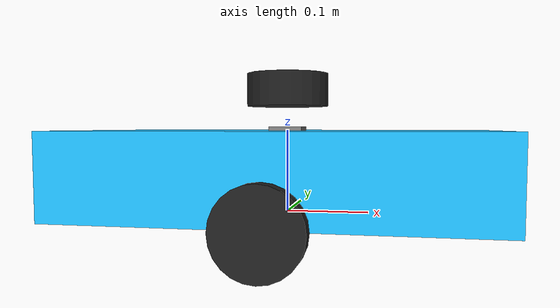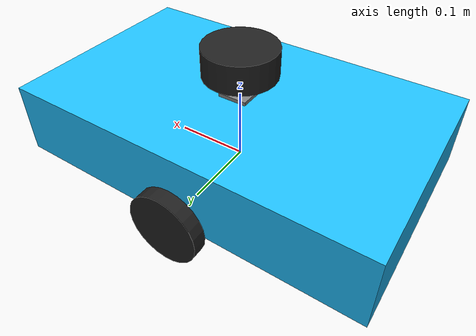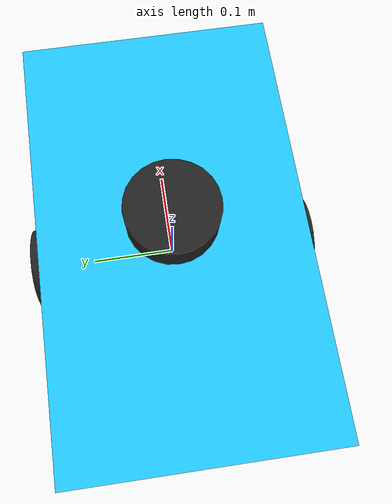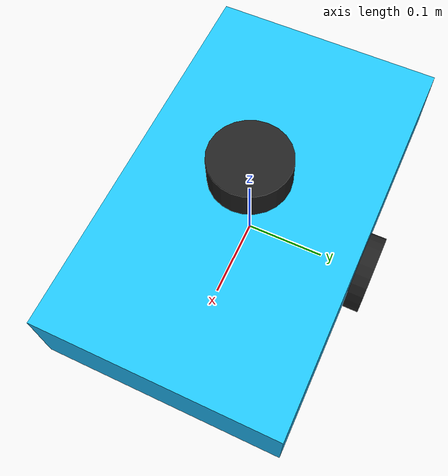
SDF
<sdf version='1.11'>
  <model name='my_robot'>
    <link name='base_link'>
      <inertial>
        <pose>0 0 0.0013157894736842109 0 0 0</pose>
        <mass>6.46</mass>
        <inertia>
          <ixx>0.051433815789473689</ixx>
          <ixy>0</ixy>
          <ixz>0</ixz>
          <iyy>0.15168381578947371</iyy>
          <iyz>0</iyz>
          <izz>0.19047</izz>
        </inertia>
      </inertial>
      <collision name='base_link_collision'>
        <pose>0 0 0.050000000000000003 0 0 0</pose>
        <geometry>
          <box>
            <size>0.5 0.29999999999999999 0.10000000000000001</size>
          </box>
        </geometry>
      </collision>
      <collision name='base_link_fixed_joint_lump__front_caster_collision_1'>
        <pose>0.22500000000000001 0 0 0 0 0</pose>
        <geometry>
          <sphere>
            <radius>0.025000000000000001</radius>
          </sphere>
        </geometry>
      </collision>
      <collision name='base_link_fixed_joint_lump__imu_link_collision_2'>
        <pose>0 0 0.10000000000000001 0 0 0</pose>
        <geometry>
          <box>
            <size>0.040000000000000001 0.040000000000000001 0.01</size>
          </box>
        </geometry>
      </collision>
      <collision name='base_link_fixed_joint_lump__lidar_link_collision_3'>
        <pose>0 0 0.14999999999999999 0 0 0</pose>
        <geometry>
          <cylinder>
            <length>0.040000000000000001</length>
            <radius>0.050000000000000003</radius>
          </cylinder>
        </geometry>
      </collision>
      <collision name='base_link_fixed_joint_lump__rear_caster_collision_4'>
        <pose>-0.22500000000000001 0 0 0 0 0</pose>
        <geometry>
          <sphere>
            <radius>0.025000000000000001</radius>
          </sphere>
        </geometry>
      </collision>
      <visual name='base_link_visual'>
        <pose>0 0 0.050000000000000003 0 0 0</pose>
        <geometry>
          <box>
            <size>0.5 0.29999999999999999 0.10000000000000001</size>
          </box>
        </geometry>
        <material>
          <diffuse>0.125 0.75000006 1 1</diffuse>
          <ambient>0.125 0.75000006 1 1</ambient>
        </material>
      </visual>
      <visual name='base_link_fixed_joint_lump__front_caster_visual_1'>
        <pose>0.22500000000000001 0 0 0 0 0</pose>
        <geometry>
          <sphere>
            <radius>0.025000000000000001</radius>
          </sphere>
        </geometry>
        <material>
          <diffuse>0.5 0.5 0.5 1</diffuse>
          <ambient>0.5 0.5 0.5 1</ambient>
        </material>
      </visual>
      <visual name='base_link_fixed_joint_lump__imu_link_visual_2'>
        <pose>0 0 0.10000000000000001 0 0 0</pose>
        <geometry>
          <box>
            <size>0.040000000000000001 0.040000000000000001 0.01</size>
          </box>
        </geometry>
        <material>
          <diffuse>0.5 0.5 0.5 1</diffuse>
          <ambient>0.5 0.5 0.5 1</ambient>
        </material>
      </visual>
      <visual name='base_link_fixed_joint_lump__lidar_link_visual_3'>
        <pose>0 0 0.14999999999999999 0 0 0</pose>
        <geometry>
          <cylinder>
            <length>0.040000000000000001</length>
            <radius>0.050000000000000003</radius>
          </cylinder>
        </geometry>
        <material>
          <diffuse>0.125 0.125 0.125 1</diffuse>
          <ambient>0.125 0.125 0.125 1</ambient>
        </material>
      </visual>
      <visual name='base_link_fixed_joint_lump__rear_caster_visual_4'>
        <pose>-0.22500000000000001 0 0 0 0 0</pose>
        <geometry>
          <sphere>
            <radius>0.025000000000000001</radius>
          </sphere>
        </geometry>
        <material>
          <diffuse>0.5 0.5 0.5 1</diffuse>
          <ambient>0.5 0.5 0.5 1</ambient>
        </material>
      </visual>
    </link>
    <joint name='left_wheel_joint' type='revolute'>
      <pose relative_to='base_link'>0 0.16 0 0 0 0</pose>
      <parent>base_link</parent>
      <child>left_wheel</child>
      <axis>
        <xyz>0 1 0</xyz>
        <limit>
          <effort>10</effort>
          <velocity>10</velocity>
          <lower>-inf</lower>
          <upper>inf</upper>
        </limit>
        <dynamics>
          <damping>0.10000000000000001</damping>
          <friction>0.10000000000000001</friction>
          <spring_reference>0</spring_reference>
          <spring_stiffness>0</spring_stiffness>
        </dynamics>
      </axis>
    </joint>
    <link name='left_wheel'>
      <pose relative_to='left_wheel_joint'>0 0 0 0 0 0</pose>
      <inertial>
        <pose>0 0 0 0 0 0</pose>
        <mass>1</mass>
        <inertia>
          <ixx>0.001</ixx>
          <ixy>0</ixy>
          <ixz>0</ixz>
          <iyy>0.001</iyy>
          <iyz>0</iyz>
          <izz>0.001</izz>
        </inertia>
      </inertial>
      <collision name='left_wheel_collision'>
        <pose>0 0 0 1.5708 0 0</pose>
        <geometry>
          <cylinder>
            <length>0.02</length>
            <radius>0.050000000000000003</radius>
          </cylinder>
        </geometry>
      </collision>
      <visual name='left_wheel_visual'>
        <pose>0 0 0 1.5708 0 0</pose>
        <geometry>
          <cylinder>
            <length>0.02</length>
            <radius>0.050000000000000003</radius>
          </cylinder>
        </geometry>
        <material>
          <diffuse>0.125 0.125 0.125 1</diffuse>
          <ambient>0.125 0.125 0.125 1</ambient>
        </material>
      </visual>
    </link>
    <joint name='right_wheel_joint' type='revolute'>
      <pose relative_to='base_link'>0 -0.16 0 0 0 0</pose>
      <parent>base_link</parent>
      <child>right_wheel</child>
      <axis>
        <xyz>0 1 0</xyz>
        <limit>
          <effort>10</effort>
          <velocity>10</velocity>
          <lower>-inf</lower>
          <upper>inf</upper>
        </limit>
        <dynamics>
          <damping>0.10000000000000001</damping>
          <friction>0.10000000000000001</friction>
          <spring_reference>0</spring_reference>
          <spring_stiffness>0</spring_stiffness>
        </dynamics>
      </axis>
    </joint>
    <link name='right_wheel'>
      <pose relative_to='right_wheel_joint'>0 0 0 0 0 0</pose>
      <inertial>
        <pose>0 0 0 0 0 0</pose>
        <mass>1</mass>
        <inertia>
          <ixx>0.001</ixx>
          <ixy>0</ixy>
          <ixz>0</ixz>
          <iyy>0.001</iyy>
          <iyz>0</iyz>
          <izz>0.001</izz>
        </inertia>
      </inertial>
      <collision name='right_wheel_collision'>
        <pose>0 0 0 1.5708 0 0</pose>
        <geometry>
          <cylinder>
            <length>0.02</length>
            <radius>0.050000000000000003</radius>
          </cylinder>
        </geometry>
      </collision>
      <visual name='right_wheel_visual'>
        <pose>0 0 0 1.5708 0 0</pose>
        <geometry>
          <cylinder>
            <length>0.02</length>
            <radius>0.050000000000000003</radius>
          </cylinder>
        </geometry>
        <material>
          <diffuse>0.125 0.125 0.125 1</diffuse>
          <ambient>0.125 0.125 0.125 1</ambient>
        </material>
      </visual>
    </link>
    <frame name='base_footprint_joint' attached_to='base_link'>
      <pose>0 0 -0.050000000000000003 0 0 0</pose>
    </frame>
    <frame name='base_footprint' attached_to='base_footprint_joint'>
      <pose>0 0 0 0 0 0</pose>
    </frame>
    <frame name='front_caster_joint' attached_to='base_link'>
      <pose>0.22500000000000001 0 0 0 0 0</pose>
    </frame>
    <frame name='front_caster' attached_to='front_caster_joint'>
      <pose>0 0 0 0 0 0</pose>
    </frame>
    <frame name='imu_link_joint' attached_to='base_link'>
      <pose>0 0 0.10000000000000001 0 0 0</pose>
    </frame>
    <frame name='imu_link' attached_to='imu_link_joint'>
      <pose>0 0 0 0 0 0</pose>
    </frame>
    <frame name='lidar_link_joint' attached_to='base_link'>
      <pose>0 0 0.14999999999999999 0 0 0</pose>
    </frame>
    <frame name='lidar_link' attached_to='lidar_link_joint'>
      <pose>0 0 0 0 0 0</pose>
    </frame>
    <frame name='rear_caster_joint' attached_to='base_link'>
      <pose>-0.22500000000000001 0 0 0 0 0</pose>
    </frame>
    <frame name='rear_caster' attached_to='rear_caster_joint'>
      <pose>0 0 0 0 0 0</pose>
    </frame>
  </model>
</sdf>
